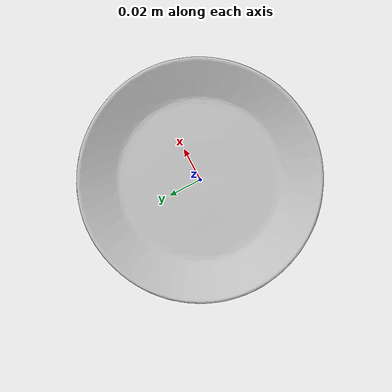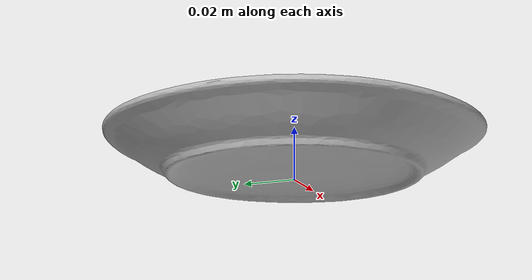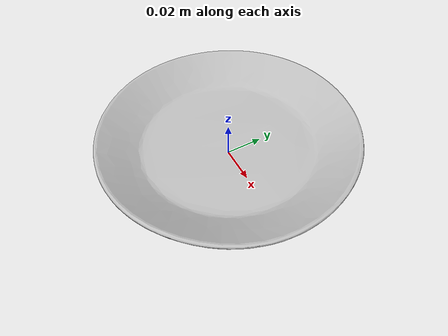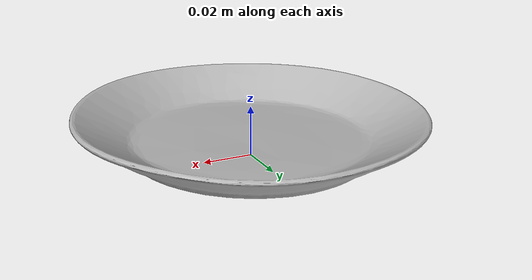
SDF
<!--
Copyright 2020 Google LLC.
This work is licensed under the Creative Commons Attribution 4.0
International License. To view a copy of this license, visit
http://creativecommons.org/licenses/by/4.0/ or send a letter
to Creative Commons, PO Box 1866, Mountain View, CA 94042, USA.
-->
<?xml version="1.0" ?>
<sdf version="1.6">
  <model name="utensil_plate_blue_small">
    <link name="link_0">
      <visual name="visual">
        <geometry>
          <mesh>
            <uri>model://utensil_plate_blue_small/meshes/model.obj</uri>
          </mesh>
        </geometry>
      </visual>
      <collision name="collision_0">
        <geometry>
          <mesh>
            <uri>model://utensil_plate_blue_small/meshes/model.obj</uri>
          </mesh>
        </geometry>
      </collision>
    </link>
  </model>
</sdf>
